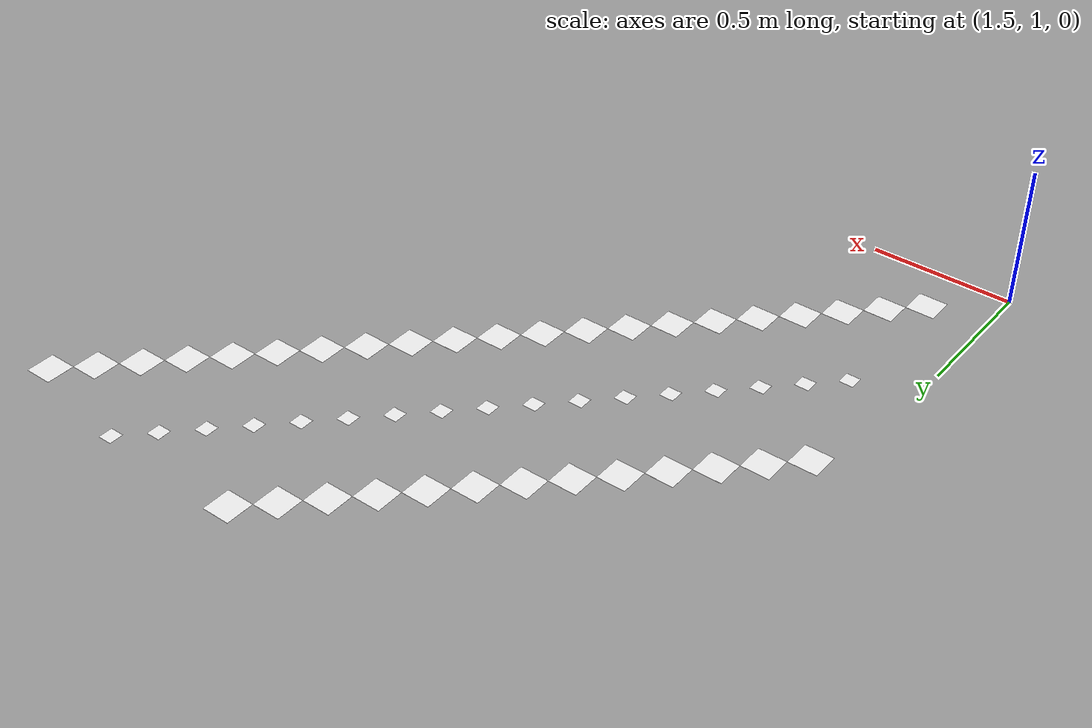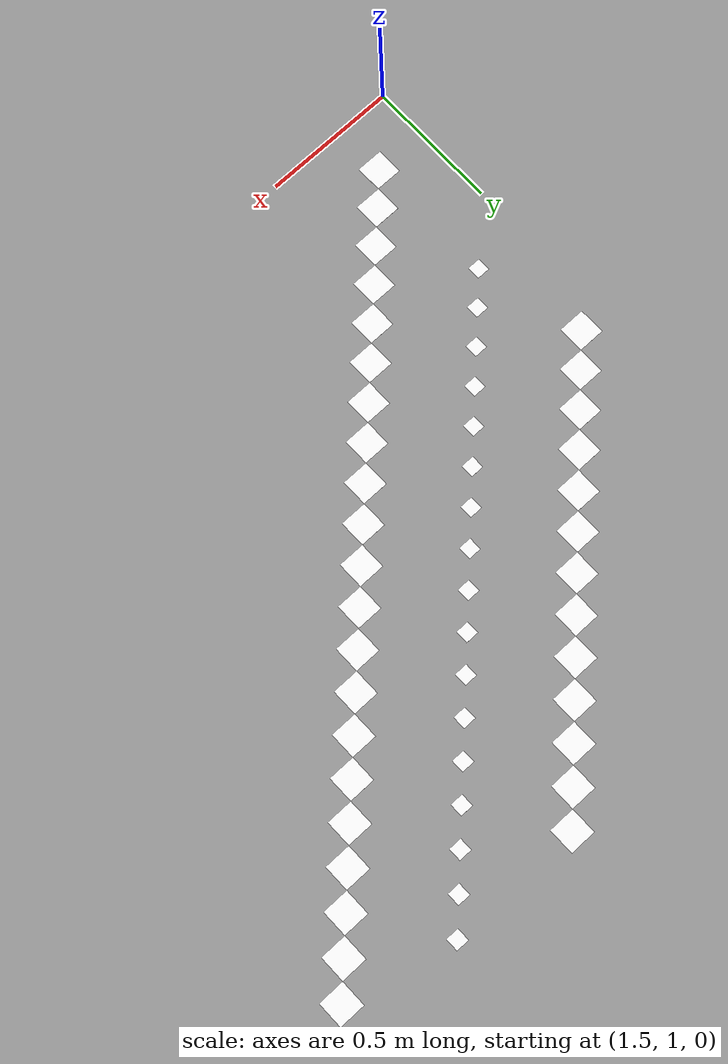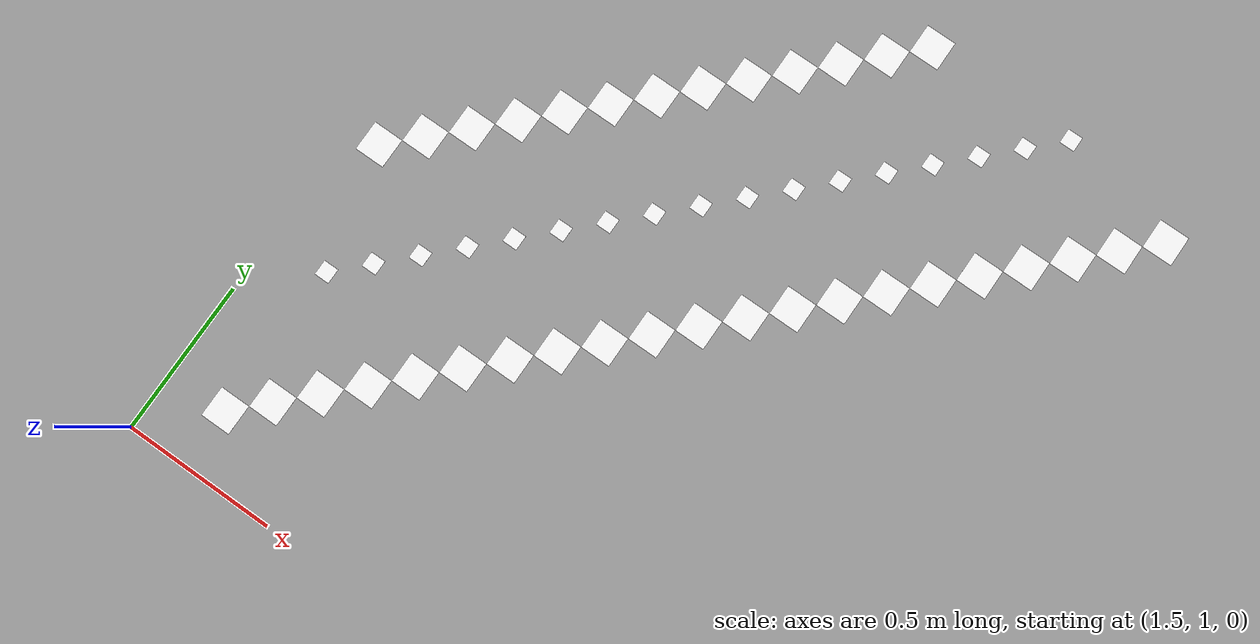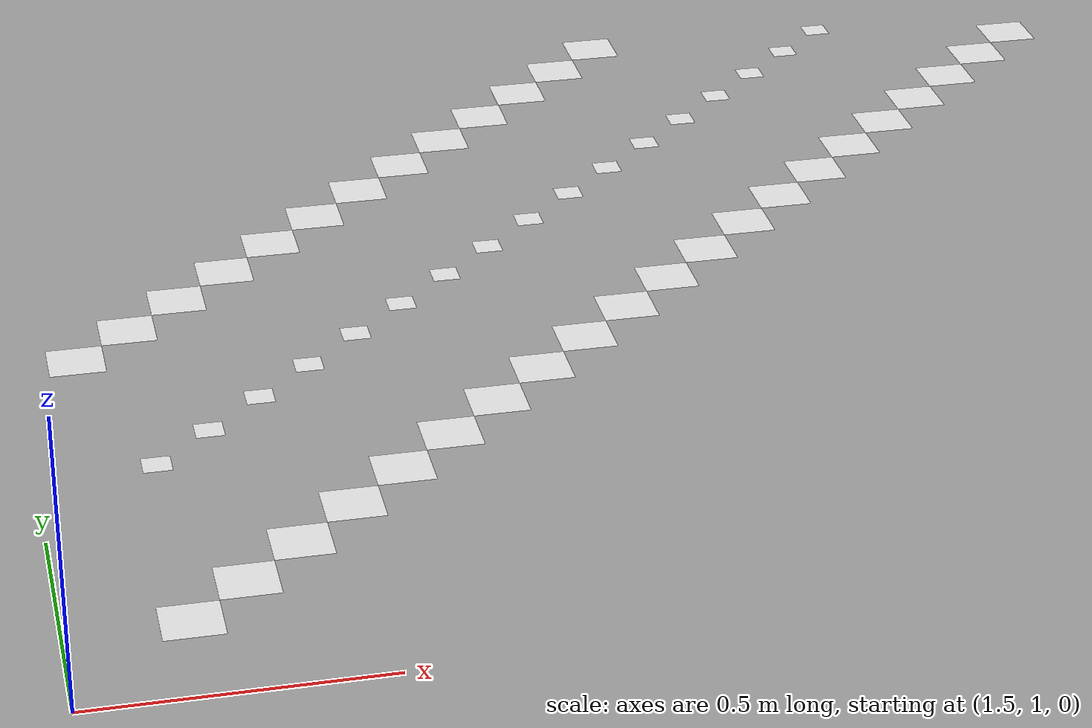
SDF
<sdf version="1.5">
 <model name="AutoNOMOS_mini_intersection">
  <static>true</static>
  <link name="L1_p1.6">
   <pose>1.6 2.1 0.011 0 0 0</pose>
   <visual name="visual_L1_p1.6">
    <cast_shadows>false</cast_shadows>
    <geometry><plane><normal>0 0 1</normal><size>.1 .1</size></plane></geometry>
    <material>
     <ambient>0 0 0 0</ambient>
     <diffuse>1 1 1 0</diffuse>
     <specular>0 0 0 0</specular>
     <emissive>0 0 0 0</emissive>
    </material>
   </visual>
  </link>
  <link name="L1_p68">
   <pose>1.7 1.7 0.011 0 0 0</pose>
   <visual name="visual_L1_p68">
    <cast_shadows>false</cast_shadows>
    <geometry><plane><normal>0 0 1</normal><size>.05 .05</size></plane></geometry>
    <material>
     <ambient>0 0 0 0</ambient>
     <diffuse>1 1 1 0</diffuse>
     <specular>0 0 0 0</specular>
     <emissive>0 0 0 0</emissive>
    </material>
   </visual>
  </link>
  <link name="L1_p1.7">
   <pose>1.7 2.2 0.011 0 0 0</pose>
   <visual name="visual_L1_p1.7">
    <cast_shadows>false</cast_shadows>
    <geometry><plane><normal>0 0 1</normal><size>.1 .1</size></plane></geometry>
    <material>
     <ambient>0 0 0 0</ambient>
     <diffuse>1 1 1 0</diffuse>
     <specular>0 0 0 0</specular>
     <emissive>0 0 0 0</emissive>
    </material>
   </visual>
  </link>
  <link name="L1_p2.2">
   <pose>1.7 1.2 0.011 0 0 0</pose>
   <visual name="visual_L1_p2.2">
    <cast_shadows>false</cast_shadows>
    <geometry><plane><normal>0 0 1</normal><size>.1 .1</size></plane></geometry>
    <material>
     <ambient>0 0 0 0</ambient>
     <diffuse>1 1 1 0</diffuse>
     <specular>0 0 0 0</specular>
     <emissive>0 0 0 0</emissive>
    </material>
   </visual>
  </link>
  <link name="L1_p69">
   <pose>1.8 1.8 0.011 0 0 0</pose>
   <visual name="visual_L1_p69">
    <cast_shadows>false</cast_shadows>
    <geometry><plane><normal>0 0 1</normal><size>.05 .05</size></plane></geometry>
    <material>
     <ambient>0 0 0 0</ambient>
     <diffuse>1 1 1 0</diffuse>
     <specular>0 0 0 0</specular>
     <emissive>0 0 0 0</emissive>
    </material>
   </visual>
  </link>
  <link name="L1_p1.8">
   <pose>1.8 2.3 0.011 0 0 0</pose>
   <visual name="visual_L1_p1.8">
    <cast_shadows>false</cast_shadows>
    <geometry><plane><normal>0 0 1</normal><size>.1 .1</size></plane></geometry>
    <material>
     <ambient>0 0 0 0</ambient>
     <diffuse>1 1 1 0</diffuse>
     <specular>0 0 0 0</specular>
     <emissive>0 0 0 0</emissive>
    </material>
   </visual>
  </link>
  <link name="L1_p2.3">
   <pose>1.8 1.3 0.011 0 0 0</pose>
   <visual name="visual_L1_p2.3">
    <cast_shadows>false</cast_shadows>
    <geometry><plane><normal>0 0 1</normal><size>.1 .1</size></plane></geometry>
    <material>
     <ambient>0 0 0 0</ambient>
     <diffuse>1 1 1 0</diffuse>
     <specular>0 0 0 0</specular>
     <emissive>0 0 0 0</emissive>
    </material>
   </visual>
  </link>
  <link name="L1_p70">
   <pose>1.9 1.9 0.011 0 0 0</pose>
   <visual name="visual_L1_p70">
    <cast_shadows>false</cast_shadows>
    <geometry><plane><normal>0 0 1</normal><size>.05 .05</size></plane></geometry>
    <material>
     <ambient>0 0 0 0</ambient>
     <diffuse>1 1 1 0</diffuse>
     <specular>0 0 0 0</specular>
     <emissive>0 0 0 0</emissive>
    </material>
   </visual>
  </link>
  <link name="L1_p1.9">
   <pose>1.9 2.4 0.011 0 0 0</pose>
   <visual name="visual_L1_p1.9">
    <cast_shadows>false</cast_shadows>
    <geometry><plane><normal>0 0 1</normal><size>.1 .1</size></plane></geometry>
    <material>
     <ambient>0 0 0 0</ambient>
     <diffuse>1 1 1 0</diffuse>
     <specular>0 0 0 0</specular>
     <emissive>0 0 0 0</emissive>
    </material>
   </visual>
  </link>
  <link name="L1_p2.4">
   <pose>1.9 1.4 0.011 0 0 0</pose>
   <visual name="visual_L1_p2.4">
    <cast_shadows>false</cast_shadows>
    <geometry><plane><normal>0 0 1</normal><size>.1 .1</size></plane></geometry>
    <material>
     <ambient>0 0 0 0</ambient>
     <diffuse>1 1 1 0</diffuse>
     <specular>0 0 0 0</specular>
     <emissive>0 0 0 0</emissive>
    </material>
   </visual>
  </link>
  <link name="L1_p71">
   <pose>2 2 0.011 0 0 0</pose>
   <visual name="visual_L1_p71">
    <cast_shadows>false</cast_shadows>
    <geometry><plane><normal>0 0 1</normal><size>.05 .05</size></plane></geometry>
    <material>
     <ambient>0 0 0 0</ambient>
     <diffuse>1 1 1 0</diffuse>
     <specular>0 0 0 0</specular>
     <emissive>0 0 0 0</emissive>
    </material>
   </visual>
  </link>
  <link name="L1_p2">
   <pose>2 2.5 0.011 0 0 0</pose>
   <visual name="visual_L1_p2">
    <cast_shadows>false</cast_shadows>
    <geometry><plane><normal>0 0 1</normal><size>.1 .1</size></plane></geometry>
    <material>
     <ambient>0 0 0 0</ambient>
     <diffuse>1 1 1 0</diffuse>
     <specular>0 0 0 0</specular>
     <emissive>0 0 0 0</emissive>
    </material>
   </visual>
  </link>
  <link name="L1_p2.5">
   <pose>2 1.5 0.011 0 0 0</pose>
   <visual name="visual_L1_p2.5">
    <cast_shadows>false</cast_shadows>
    <geometry><plane><normal>0 0 1</normal><size>.1 .1</size></plane></geometry>
    <material>
     <ambient>0 0 0 0</ambient>
     <diffuse>1 1 1 0</diffuse>
     <specular>0 0 0 0</specular>
     <emissive>0 0 0 0</emissive>
    </material>
   </visual>
  </link>
  <link name="L1_p72">
   <pose>2.1 2.1 0.011 0 0 0</pose>
   <visual name="visual_L1_p72">
    <cast_shadows>false</cast_shadows>
    <geometry><plane><normal>0 0 1</normal><size>.05 .05</size></plane></geometry>
    <material>
     <ambient>0 0 0 0</ambient>
     <diffuse>1 1 1 0</diffuse>
     <specular>0 0 0 0</specular>
     <emissive>0 0 0 0</emissive>
    </material>
   </visual>
  </link>
  <link name="L1_p2.1">
   <pose>2.1 2.6 0.011 0 0 0</pose>
   <visual name="visual_L1_p2.1">
    <cast_shadows>false</cast_shadows>
    <geometry><plane><normal>0 0 1</normal><size>.1 .1</size></plane></geometry>
    <material>
     <ambient>0 0 0 0</ambient>
     <diffuse>1 1 1 0</diffuse>
     <specular>0 0 0 0</specular>
     <emissive>0 0 0 0</emissive>
    </material>
   </visual>
  </link>
  <link name="L1_p2.6">
   <pose>2.1 1.6 0.011 0 0 0</pose>
   <visual name="visual_L1_p2.6">
    <cast_shadows>false</cast_shadows>
    <geometry><plane><normal>0 0 1</normal><size>.1 .1</size></plane></geometry>
    <material>
     <ambient>0 0 0 0</ambient>
     <diffuse>1 1 1 0</diffuse>
     <specular>0 0 0 0</specular>
     <emissive>0 0 0 0</emissive>
    </material>
   </visual>
  </link>
  <link name="L1_p73">
   <pose>2.2 2.2 0.011 0 0 0</pose>
   <visual name="visual_L1_p73">
    <cast_shadows>false</cast_shadows>
    <geometry><plane><normal>0 0 1</normal><size>.05 .05</size></plane></geometry>
    <material>
     <ambient>0 0 0 0</ambient>
     <diffuse>1 1 1 0</diffuse>
     <specular>0 0 0 0</specular>
     <emissive>0 0 0 0</emissive>
    </material>
   </visual>
  </link>
  <link name="L1_p2.2">
   <pose>2.2 2.7 0.011 0 0 0</pose>
   <visual name="visual_L1_p2.2">
    <cast_shadows>false</cast_shadows>
    <geometry><plane><normal>0 0 1</normal><size>.1 .1</size></plane></geometry>
    <material>
     <ambient>0 0 0 0</ambient>
     <diffuse>1 1 1 0</diffuse>
     <specular>0 0 0 0</specular>
     <emissive>0 0 0 0</emissive>
    </material>
   </visual>
  </link>
  <link name="L1_p2.7">
   <pose>2.2 1.7 0.011 0 0 0</pose>
   <visual name="visual_L1_p2.7">
    <cast_shadows>false</cast_shadows>
    <geometry><plane><normal>0 0 1</normal><size>.1 .1</size></plane></geometry>
    <material>
     <ambient>0 0 0 0</ambient>
     <diffuse>1 1 1 0</diffuse>
     <specular>0 0 0 0</specular>
     <emissive>0 0 0 0</emissive>
    </material>
   </visual>
  </link>
  <link name="L1_p74">
   <pose>2.3 2.3 0.011 0 0 0</pose>
   <visual name="visual_L1_p74">
    <cast_shadows>false</cast_shadows>
    <geometry><plane><normal>0 0 1</normal><size>.05 .05</size></plane></geometry>
    <material>
     <ambient>0 0 0 0</ambient>
     <diffuse>1 1 1 0</diffuse>
     <specular>0 0 0 0</specular>
     <emissive>0 0 0 0</emissive>
    </material>
   </visual>
  </link>
  <link name="L1_p2.3">
   <pose>2.3 2.8 0.011 0 0 0</pose>
   <visual name="visual_L1_p2.3">
    <cast_shadows>false</cast_shadows>
    <geometry><plane><normal>0 0 1</normal><size>.1 .1</size></plane></geometry>
    <material>
     <ambient>0 0 0 0</ambient>
     <diffuse>1 1 1 0</diffuse>
     <specular>0 0 0 0</specular>
     <emissive>0 0 0 0</emissive>
    </material>
   </visual>
  </link>
  <link name="L1_p2.8">
   <pose>2.3 1.8 0.011 0 0 0</pose>
   <visual name="visual_L1_p2.8">
    <cast_shadows>false</cast_shadows>
    <geometry><plane><normal>0 0 1</normal><size>.1 .1</size></plane></geometry>
    <material>
     <ambient>0 0 0 0</ambient>
     <diffuse>1 1 1 0</diffuse>
     <specular>0 0 0 0</specular>
     <emissive>0 0 0 0</emissive>
    </material>
   </visual>
  </link>
  <link name="L1_p75">
   <pose>2.4 2.4 0.011 0 0 0</pose>
   <visual name="visual_L1_p75">
    <cast_shadows>false</cast_shadows>
    <geometry><plane><normal>0 0 1</normal><size>.05 .05</size></plane></geometry>
    <material>
     <ambient>0 0 0 0</ambient>
     <diffuse>1 1 1 0</diffuse>
     <specular>0 0 0 0</specular>
     <emissive>0 0 0 0</emissive>
    </material>
   </visual>
  </link>
  <link name="L1_p2.4">
   <pose>2.4 2.9 0.011 0 0 0</pose>
   <visual name="visual_L1_p2.4">
    <cast_shadows>false</cast_shadows>
    <geometry><plane><normal>0 0 1</normal><size>.1 .1</size></plane></geometry>
    <material>
     <ambient>0 0 0 0</ambient>
     <diffuse>1 1 1 0</diffuse>
     <specular>0 0 0 0</specular>
     <emissive>0 0 0 0</emissive>
    </material>
   </visual>
  </link>
  <link name="L1_p2.9">
   <pose>2.4 1.9 0.011 0 0 0</pose>
   <visual name="visual_L1_p2.9">
    <cast_shadows>false</cast_shadows>
    <geometry><plane><normal>0 0 1</normal><size>.1 .1</size></plane></geometry>
    <material>
     <ambient>0 0 0 0</ambient>
     <diffuse>1 1 1 0</diffuse>
     <specular>0 0 0 0</specular>
     <emissive>0 0 0 0</emissive>
    </material>
   </visual>
  </link>
  <link name="L1_p76">
   <pose>2.5 2.5 0.011 0 0 0</pose>
   <visual name="visual_L1_p76">
    <cast_shadows>false</cast_shadows>
    <geometry><plane><normal>0 0 1</normal><size>.05 .05</size></plane></geometry>
    <material>
     <ambient>0 0 0 0</ambient>
     <diffuse>1 1 1 0</diffuse>
     <specular>0 0 0 0</specular>
     <emissive>0 0 0 0</emissive>
    </material>
   </visual>
  </link>
  <link name="L1_p2.5">
   <pose>2.5 3 0.011 0 0 0</pose>
   <visual name="visual_L1_p2.5">
    <cast_shadows>false</cast_shadows>
    <geometry><plane><normal>0 0 1</normal><size>.1 .1</size></plane></geometry>
    <material>
     <ambient>0 0 0 0</ambient>
     <diffuse>1 1 1 0</diffuse>
     <specular>0 0 0 0</specular>
     <emissive>0 0 0 0</emissive>
    </material>
   </visual>
  </link>
  <link name="L1_p3">
   <pose>2.5 2 0.011 0 0 0</pose>
   <visual name="visual_L1_p3">
    <cast_shadows>false</cast_shadows>
    <geometry><plane><normal>0 0 1</normal><size>.1 .1</size></plane></geometry>
    <material>
     <ambient>0 0 0 0</ambient>
     <diffuse>1 1 1 0</diffuse>
     <specular>0 0 0 0</specular>
     <emissive>0 0 0 0</emissive>
    </material>
   </visual>
  </link>
  <link name="L1_p77">
   <pose>2.6 2.6 0.011 0 0 0</pose>
   <visual name="visual_L1_p77">
    <cast_shadows>false</cast_shadows>
    <geometry><plane><normal>0 0 1</normal><size>.05 .05</size></plane></geometry>
    <material>
     <ambient>0 0 0 0</ambient>
     <diffuse>1 1 1 0</diffuse>
     <specular>0 0 0 0</specular>
     <emissive>0 0 0 0</emissive>
    </material>
   </visual>
  </link>
  <link name="L1_p2.6">
   <pose>2.6 3.1 0.011 0 0 0</pose>
   <visual name="visual_L1_p2.6">
    <cast_shadows>false</cast_shadows>
    <geometry><plane><normal>0 0 1</normal><size>.1 .1</size></plane></geometry>
    <material>
     <ambient>0 0 0 0</ambient>
     <diffuse>1 1 1 0</diffuse>
     <specular>0 0 0 0</specular>
     <emissive>0 0 0 0</emissive>
    </material>
   </visual>
  </link>
  <link name="L1_p3.1">
   <pose>2.6 2.1 0.011 0 0 0</pose>
   <visual name="visual_L1_p3.1">
    <cast_shadows>false</cast_shadows>
    <geometry><plane><normal>0 0 1</normal><size>.1 .1</size></plane></geometry>
    <material>
     <ambient>0 0 0 0</ambient>
     <diffuse>1 1 1 0</diffuse>
     <specular>0 0 0 0</specular>
     <emissive>0 0 0 0</emissive>
    </material>
   </visual>
  </link>
  <link name="L1_p78">
   <pose>2.7 2.7 0.011 0 0 0</pose>
   <visual name="visual_L1_p78">
    <cast_shadows>false</cast_shadows>
    <geometry><plane><normal>0 0 1</normal><size>.05 .05</size></plane></geometry>
    <material>
     <ambient>0 0 0 0</ambient>
     <diffuse>1 1 1 0</diffuse>
     <specular>0 0 0 0</specular>
     <emissive>0 0 0 0</emissive>
    </material>
   </visual>
  </link>
  <link name="L1_p2.7">
   <pose>2.7 3.2 0.011 0 0 0</pose>
   <visual name="visual_L1_p2.7">
    <cast_shadows>false</cast_shadows>
    <geometry><plane><normal>0 0 1</normal><size>.1 .1</size></plane></geometry>
    <material>
     <ambient>0 0 0 0</ambient>
     <diffuse>1 1 1 0</diffuse>
     <specular>0 0 0 0</specular>
     <emissive>0 0 0 0</emissive>
    </material>
   </visual>
  </link>
  <link name="L1_p3.2">
   <pose>2.7 2.2 0.011 0 0 0</pose>
   <visual name="visual_L1_p3.2">
    <cast_shadows>false</cast_shadows>
    <geometry><plane><normal>0 0 1</normal><size>.1 .1</size></plane></geometry>
    <material>
     <ambient>0 0 0 0</ambient>
     <diffuse>1 1 1 0</diffuse>
     <specular>0 0 0 0</specular>
     <emissive>0 0 0 0</emissive>
    </material>
   </visual>
  </link>
  <link name="L1_p79">
   <pose>2.8 2.8 0.011 0 0 0</pose>
   <visual name="visual_L1_p79">
    <cast_shadows>false</cast_shadows>
    <geometry><plane><normal>0 0 1</normal><size>.05 .05</size></plane></geometry>
    <material>
     <ambient>0 0 0 0</ambient>
     <diffuse>1 1 1 0</diffuse>
     <specular>0 0 0 0</specular>
     <emissive>0 0 0 0</emissive>
    </material>
   </visual>
  </link>
  <link name="L1_p2.8">
   <pose>2.8 3.3 0.011 0 0 0</pose>
   <visual name="visual_L1_p2.8">
    <cast_shadows>false</cast_shadows>
    <geometry><plane><normal>0 0 1</normal><size>.1 .1</size></plane></geometry>
    <material>
     <ambient>0 0 0 0</ambient>
     <diffuse>1 1 1 0</diffuse>
     <specular>0 0 0 0</specular>
     <emissive>0 0 0 0</emissive>
    </material>
   </visual>
  </link>
  <link name="L1_p3.3">
   <pose>2.8 2.3 0.011 0 0 0</pose>
   <visual name="visual_L1_p3.3">
    <cast_shadows>false</cast_shadows>
    <geometry><plane><normal>0 0 1</normal><size>.1 .1</size></plane></geometry>
    <material>
     <ambient>0 0 0 0</ambient>
     <diffuse>1 1 1 0</diffuse>
     <specular>0 0 0 0</specular>
     <emissive>0 0 0 0</emissive>
    </material>
   </visual>
  </link>
  <link name="L1_p80">
   <pose>2.9 2.9 0.011 0 0 0</pose>
   <visual name="visual_L1_p80">
    <cast_shadows>false</cast_shadows>
    <geometry><plane><normal>0 0 1</normal><size>.05 .05</size></plane></geometry>
    <material>
     <ambient>0 0 0 0</ambient>
     <diffuse>1 1 1 0</diffuse>
     <specular>0 0 0 0</specular>
     <emissive>0 0 0 0</emissive>
    </material>
   </visual>
  </link>
  <link name="L1_p3.4">
   <pose>2.9 2.4 0.011 0 0 0</pose>
   <visual name="visual_L1_p3.4">
    <cast_shadows>false</cast_shadows>
    <geometry><plane><normal>0 0 1</normal><size>.1 .1</size></plane></geometry>
    <material>
     <ambient>0 0 0 0</ambient>
     <diffuse>1 1 1 0</diffuse>
     <specular>0 0 0 0</specular>
     <emissive>0 0 0 0</emissive>
    </material>
   </visual>
  </link>
  <link name="L1_p81">
   <pose>3 3 0.011 0 0 0</pose>
   <visual name="visual_L1_p81">
    <cast_shadows>false</cast_shadows>
    <geometry><plane><normal>0 0 1</normal><size>.05 .05</size></plane></geometry>
    <material>
     <ambient>0 0 0 0</ambient>
     <diffuse>1 1 1 0</diffuse>
     <specular>0 0 0 0</specular>
     <emissive>0 0 0 0</emissive>
    </material>
   </visual>
  </link>
  <link name="L1_p3.5">
   <pose>3 2.5 0.011 0 0 0</pose>
   <visual name="visual_L1_p3.5">
    <cast_shadows>false</cast_shadows>
    <geometry><plane><normal>0 0 1</normal><size>.1 .1</size></plane></geometry>
    <material>
     <ambient>0 0 0 0</ambient>
     <diffuse>1 1 1 0</diffuse>
     <specular>0 0 0 0</specular>
     <emissive>0 0 0 0</emissive>
    </material>
   </visual>
  </link>
  <link name="L1_p82">
   <pose>3.1 3.1 0.011 0 0 0</pose>
   <visual name="visual_L1_p82">
    <cast_shadows>false</cast_shadows>
    <geometry><plane><normal>0 0 1</normal><size>.05 .05</size></plane></geometry>
    <material>
     <ambient>0 0 0 0</ambient>
     <diffuse>1 1 1 0</diffuse>
     <specular>0 0 0 0</specular>
     <emissive>0 0 0 0</emissive>
    </material>
   </visual>
  </link>
  <link name="L1_p3.6">
   <pose>3.1 2.6 0.011 0 0 0</pose>
   <visual name="visual_L1_p3.6">
    <cast_shadows>false</cast_shadows>
    <geometry><plane><normal>0 0 1</normal><size>.1 .1</size></plane></geometry>
    <material>
     <ambient>0 0 0 0</ambient>
     <diffuse>1 1 1 0</diffuse>
     <specular>0 0 0 0</specular>
     <emissive>0 0 0 0</emissive>
    </material>
   </visual>
  </link>
  <link name="L1_p83">
   <pose>3.2 3.2 0.011 0 0 0</pose>
   <visual name="visual_L1_p83">
    <cast_shadows>false</cast_shadows>
    <geometry><plane><normal>0 0 1</normal><size>.05 .05</size></plane></geometry>
    <material>
     <ambient>0 0 0 0</ambient>
     <diffuse>1 1 1 0</diffuse>
     <specular>0 0 0 0</specular>
     <emissive>0 0 0 0</emissive>
    </material>
   </visual>
  </link>
  <link name="L1_p3.7">
   <pose>3.2 2.7 0.011 0 0 0</pose>
   <visual name="visual_L1_p3.7">
    <cast_shadows>false</cast_shadows>
    <geometry><plane><normal>0 0 1</normal><size>.1 .1</size></plane></geometry>
    <material>
     <ambient>0 0 0 0</ambient>
     <diffuse>1 1 1 0</diffuse>
     <specular>0 0 0 0</specular>
     <emissive>0 0 0 0</emissive>
    </material>
   </visual>
  </link>
  <link name="L1_p84">
   <pose>3.3 3.3 0.011 0 0 0</pose>
   <visual name="visual_L1_p84">
    <cast_shadows>false</cast_shadows>
    <geometry><plane><normal>0 0 1</normal><size>.05 .05</size></plane></geometry>
    <material>
     <ambient>0 0 0 0</ambient>
     <diffuse>1 1 1 0</diffuse>
     <specular>0 0 0 0</specular>
     <emissive>0 0 0 0</emissive>
    </material>
   </visual>
  </link>
  <link name="L1_p3.8">
   <pose>3.3 2.8 0.011 0 0 0</pose>
   <visual name="visual_L1_p3.8">
    <cast_shadows>false</cast_shadows>
    <geometry><plane><normal>0 0 1</normal><size>.1 .1</size></plane></geometry>
    <material>
     <ambient>0 0 0 0</ambient>
     <diffuse>1 1 1 0</diffuse>
     <specular>0 0 0 0</specular>
     <emissive>0 0 0 0</emissive>
    </material>
   </visual>
  </link>
  <link name="L1_p3.9">
   <pose>3.4 2.9 0.011 0 0 0</pose>
   <visual name="visual_L1_p3.9">
    <cast_shadows>false</cast_shadows>
    <geometry><plane><normal>0 0 1</normal><size>.1 .1</size></plane></geometry>
    <material>
     <ambient>0 0 0 0</ambient>
     <diffuse>1 1 1 0</diffuse>
     <specular>0 0 0 0</specular>
     <emissive>0 0 0 0</emissive>
    </material>
   </visual>
  </link>
  <link name="L1_p4">
   <pose>3.5 3 0.011 0 0 0</pose>
   <visual name="visual_L1_p4">
    <cast_shadows>false</cast_shadows>
    <geometry><plane><normal>0 0 1</normal><size>.1 .1</size></plane></geometry>
    <material>
     <ambient>0 0 0 0</ambient>
     <diffuse>1 1 1 0</diffuse>
     <specular>0 0 0 0</specular>
     <emissive>0 0 0 0</emissive>
    </material>
   </visual>
  </link>
  <link name="L1_p4.1">
   <pose>3.6 3.1 0.011 0 0 0</pose>
   <visual name="visual_L1_p4.1">
    <cast_shadows>false</cast_shadows>
    <geometry><plane><normal>0 0 1</normal><size>.1 .1</size></plane></geometry>
    <material>
     <ambient>0 0 0 0</ambient>
     <diffuse>1 1 1 0</diffuse>
     <specular>0 0 0 0</specular>
     <emissive>0 0 0 0</emissive>
    </material>
   </visual>
  </link>
  <link name="L1_p4.2">
   <pose>3.7 3.2 0.011 0 0 0</pose>
   <visual name="visual_L1_p4.2">
    <cast_shadows>false</cast_shadows>
    <geometry><plane><normal>0 0 1</normal><size>.1 .1</size></plane></geometry>
    <material>
     <ambient>0 0 0 0</ambient>
     <diffuse>1 1 1 0</diffuse>
     <specular>0 0 0 0</specular>
     <emissive>0 0 0 0</emissive>
    </material>
   </visual>
  </link>
 </model>
</sdf>
